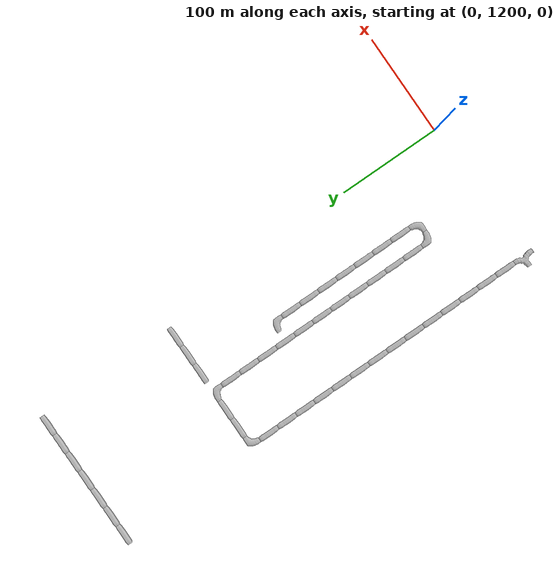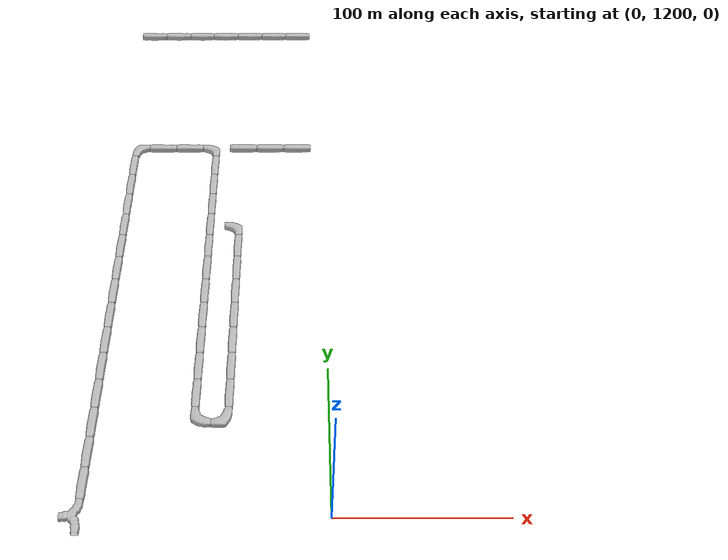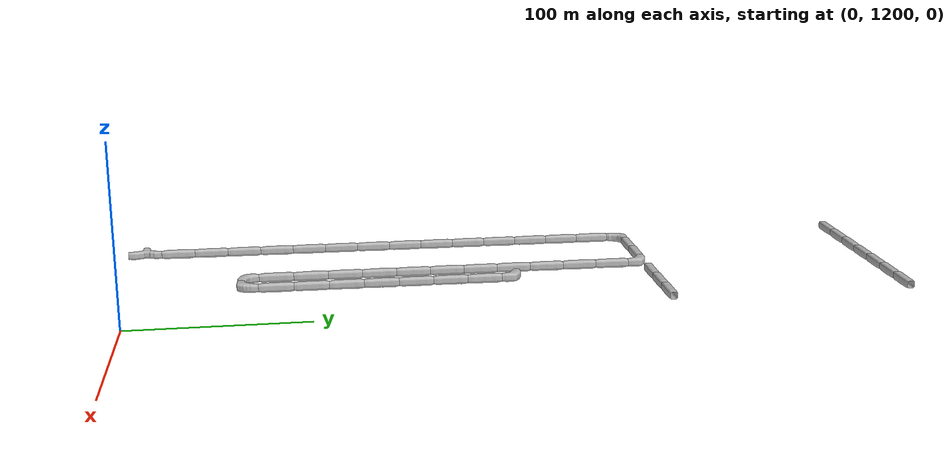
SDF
<sdf version="1.6">
 <world name="cave_16000_64">
  <include>
   <static>true</static>
   <name>cave_-7_60</name>
   <pose>-140 1200 0 0 0 1.5707963267948966</pose>
   <uri>model://cave_3way_20m</uri>
  </include>
  <include>
   <static>true</static>
   <name>cave_-7_61</name>
   <pose>-140 1220 0 0 0 0.0</pose>
   <uri>model://cave_straight_20m</uri>
  </include>
  <include>
   <static>true</static>
   <name>cave_-7_62</name>
   <pose>-140 1240 0 0 0 0.0</pose>
   <uri>model://cave_straight_20m</uri>
  </include>
  <include>
   <static>true</static>
   <name>cave_-7_63</name>
   <pose>-140 1260 0 0 0 0.0</pose>
   <uri>model://cave_straight_20m</uri>
  </include>
  <include>
   <static>true</static>
   <name>cave_-7_64</name>
   <pose>-140 1280 0 0 0 0.0</pose>
   <uri>model://cave_straight_20m</uri>
  </include>
  <include>
   <static>true</static>
   <name>cave_-7_65</name>
   <pose>-140 1300 0 0 0 0.0</pose>
   <uri>model://cave_straight_20m</uri>
  </include>
  <include>
   <static>true</static>
   <name>cave_-7_66</name>
   <pose>-140 1320 0 0 0 0.0</pose>
   <uri>model://cave_straight_20m</uri>
  </include>
  <include>
   <static>true</static>
   <name>cave_-7_67</name>
   <pose>-140 1340 0 0 0 0.0</pose>
   <uri>model://cave_straight_20m</uri>
  </include>
  <include>
   <static>true</static>
   <name>cave_-7_68</name>
   <pose>-140 1360 0 0 0 0.0</pose>
   <uri>model://cave_straight_20m</uri>
  </include>
  <include>
   <static>true</static>
   <name>cave_-7_69</name>
   <pose>-140 1380 0 0 0 0.0</pose>
   <uri>model://cave_straight_20m</uri>
  </include>
  <include>
   <static>true</static>
   <name>cave_-7_70</name>
   <pose>-140 1400 0 0 0 0.0</pose>
   <uri>model://cave_straight_20m</uri>
  </include>
  <include>
   <static>true</static>
   <name>cave_-7_71</name>
   <pose>-140 1420 0 0 0 0.0</pose>
   <uri>model://cave_straight_20m</uri>
  </include>
  <include>
   <static>true</static>
   <name>cave_-7_72</name>
   <pose>-140 1440 0 0 0 0.0</pose>
   <uri>model://cave_straight_20m</uri>
  </include>
  <include>
   <static>true</static>
   <name>cave_-7_73</name>
   <pose>-140 1460 0 0 0 0.0</pose>
   <uri>model://cave_straight_20m</uri>
  </include>
  <include>
   <static>true</static>
   <name>cave_-7_74</name>
   <pose>-140 1480 0 0 0 0.0</pose>
   <uri>model://cave_straight_20m</uri>
  </include>
  <include>
   <static>true</static>
   <name>cave_-7_75</name>
   <pose>-140 1500 0 0 0 -1.5707963267948966</pose>
   <uri>model://cave_L_20m</uri>
  </include>
  <include>
   <static>true</static>
   <name>cave_-6_75</name>
   <pose>-120 1500 0 0 0 1.5707963267948966</pose>
   <uri>model://cave_straight_20m</uri>
  </include>
  <include>
   <static>true</static>
   <name>cave_-5_75</name>
   <pose>-100 1500 0 0 0 1.5707963267948966</pose>
   <uri>model://cave_straight_20m</uri>
  </include>
  <include>
   <static>true</static>
   <name>cave_-4_75</name>
   <pose>-80 1500 0 0 0 3.141592653589793</pose>
   <uri>model://cave_L_20m</uri>
  </include>
  <include>
   <static>true</static>
   <name>cave_-4_74</name>
   <pose>-80 1480 0 0 0 0.0</pose>
   <uri>model://cave_straight_20m</uri>
  </include>
  <include>
   <static>true</static>
   <name>cave_-4_73</name>
   <pose>-80 1460 0 0 0 0.0</pose>
   <uri>model://cave_straight_20m</uri>
  </include>
  <include>
   <static>true</static>
   <name>cave_-4_72</name>
   <pose>-80 1440 0 0 0 0.0</pose>
   <uri>model://cave_straight_20m</uri>
  </include>
  <include>
   <static>true</static>
   <name>cave_-4_71</name>
   <pose>-80 1420 0 0 0 0.0</pose>
   <uri>model://cave_straight_20m</uri>
  </include>
  <include>
   <static>true</static>
   <name>cave_-4_70</name>
   <pose>-80 1400 0 0 0 0.0</pose>
   <uri>model://cave_straight_20m</uri>
  </include>
  <include>
   <static>true</static>
   <name>cave_-4_69</name>
   <pose>-80 1380 0 0 0 0.0</pose>
   <uri>model://cave_straight_20m</uri>
  </include>
  <include>
   <static>true</static>
   <name>cave_-4_68</name>
   <pose>-80 1360 0 0 0 0.0</pose>
   <uri>model://cave_straight_20m</uri>
  </include>
  <include>
   <static>true</static>
   <name>cave_-4_67</name>
   <pose>-80 1340 0 0 0 0.0</pose>
   <uri>model://cave_straight_20m</uri>
  </include>
  <include>
   <static>true</static>
   <name>cave_-4_66</name>
   <pose>-80 1320 0 0 0 0.0</pose>
   <uri>model://cave_straight_20m</uri>
  </include>
  <include>
   <static>true</static>
   <name>cave_-4_65</name>
   <pose>-80 1300 0 0 0 0.0</pose>
   <uri>model://cave_straight_20m</uri>
  </include>
  <include>
   <static>true</static>
   <name>cave_-4_64</name>
   <pose>-80 1280 0 0 0 0.0</pose>
   <uri>model://cave_straight_20m</uri>
  </include>
  <include>
   <static>true</static>
   <name>cave_-4_63</name>
   <pose>-80 1260 0 0 0 0.0</pose>
   <uri>model://cave_L_20m</uri>
  </include>
  <include>
   <static>true</static>
   <name>cave_-3_63</name>
   <pose>-60 1260 0 0 0 1.5707963267948966</pose>
   <uri>model://cave_L_20m</uri>
  </include>
  <include>
   <static>true</static>
   <name>cave_-3_64</name>
   <pose>-60 1280 0 0 0 0.0</pose>
   <uri>model://cave_straight_20m</uri>
  </include>
  <include>
   <static>true</static>
   <name>cave_-3_65</name>
   <pose>-60 1300 0 0 0 0.0</pose>
   <uri>model://cave_straight_20m</uri>
  </include>
  <include>
   <static>true</static>
   <name>cave_-3_66</name>
   <pose>-60 1320 0 0 0 0.0</pose>
   <uri>model://cave_straight_20m</uri>
  </include>
  <include>
   <static>true</static>
   <name>cave_-3_67</name>
   <pose>-60 1340 0 0 0 0.0</pose>
   <uri>model://cave_straight_20m</uri>
  </include>
  <include>
   <static>true</static>
   <name>cave_-3_68</name>
   <pose>-60 1360 0 0 0 0.0</pose>
   <uri>model://cave_straight_20m</uri>
  </include>
  <include>
   <static>true</static>
   <name>cave_-3_69</name>
   <pose>-60 1380 0 0 0 0.0</pose>
   <uri>model://cave_straight_20m</uri>
  </include>
  <include>
   <static>true</static>
   <name>cave_-3_70</name>
   <pose>-60 1400 0 0 0 0.0</pose>
   <uri>model://cave_straight_20m</uri>
  </include>
  <include>
   <static>true</static>
   <name>cave_-3_71</name>
   <pose>-60 1420 0 0 0 3.141592653589793</pose>
   <uri>model://cave_L_20m</uri>
  </include>
  <include>
   <static>true</static>
   <name>cave_-7_82</name>
   <pose>-140 1640 0 0 0 1.5707963267948966</pose>
   <uri>model://cave_straight_20m</uri>
  </include>
  <include>
   <static>true</static>
   <name>cave_-6_82</name>
   <pose>-120 1640 0 0 0 1.5707963267948966</pose>
   <uri>model://cave_straight_20m</uri>
  </include>
  <include>
   <static>true</static>
   <name>cave_-5_82</name>
   <pose>-100 1640 0 0 0 1.5707963267948966</pose>
   <uri>model://cave_straight_20m</uri>
  </include>
  <include>
   <static>true</static>
   <name>cave_-4_82</name>
   <pose>-80 1640 0 0 0 1.5707963267948966</pose>
   <uri>model://cave_straight_20m</uri>
  </include>
  <include>
   <static>true</static>
   <name>cave_-3_82</name>
   <pose>-60 1640 0 0 0 1.5707963267948966</pose>
   <uri>model://cave_straight_20m</uri>
  </include>
  <include>
   <static>true</static>
   <name>cave_-2_82</name>
   <pose>-40 1640 0 0 0 1.5707963267948966</pose>
   <uri>model://cave_straight_20m</uri>
  </include>
  <include>
   <static>true</static>
   <name>cave_-1_82</name>
   <pose>-20 1640 0 0 0 1.5707963267948966</pose>
   <uri>model://cave_straight_20m</uri>
  </include>
  <include>
   <static>true</static>
   <name>cave_-1_75</name>
   <pose>-20 1500 0 0 0 1.5707963267948966</pose>
   <uri>model://cave_straight_20m</uri>
  </include>
  <include>
   <static>true</static>
   <name>cave_-2_75</name>
   <pose>-40 1500 0 0 0 1.5707963267948966</pose>
   <uri>model://cave_straight_20m</uri>
  </include>
  <include>
   <static>true</static>
   <name>cave_-3_75</name>
   <pose>-60 1500 0 0 0 1.5707963267948966</pose>
   <uri>model://cave_straight_20m</uri>
  </include>
 </world>
</sdf>
